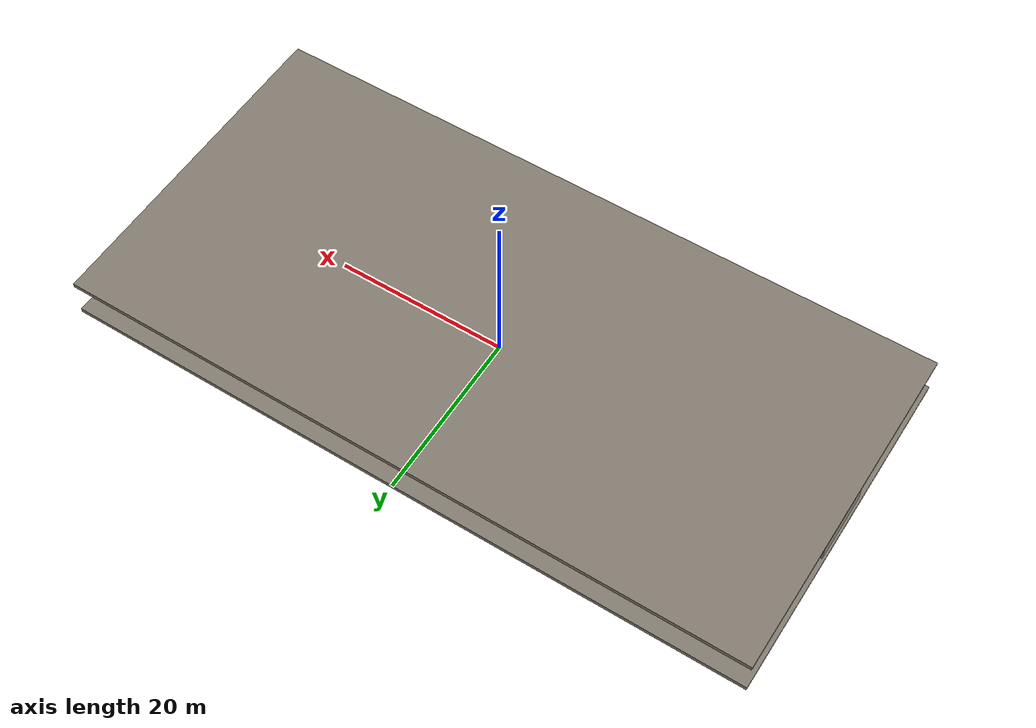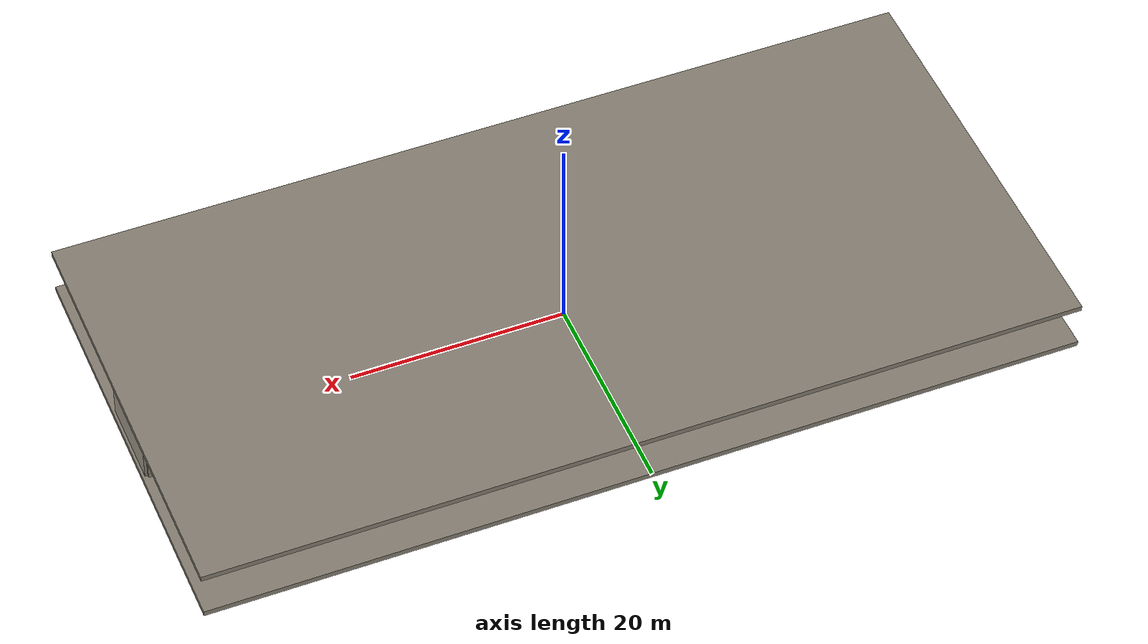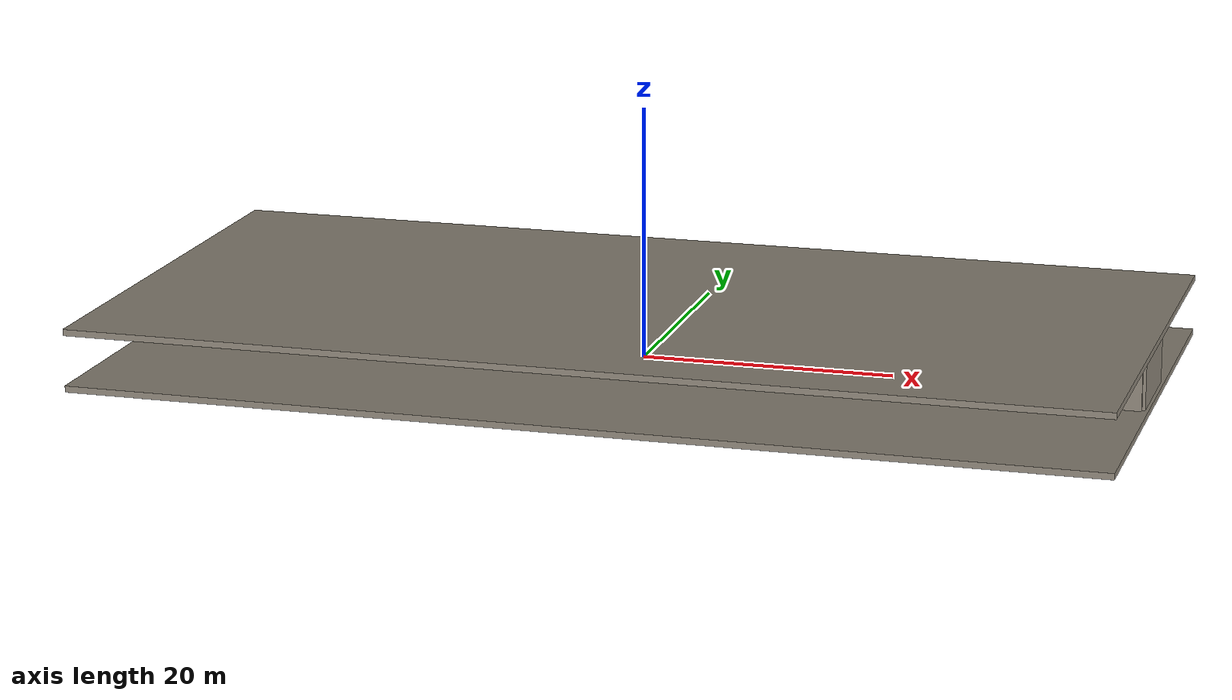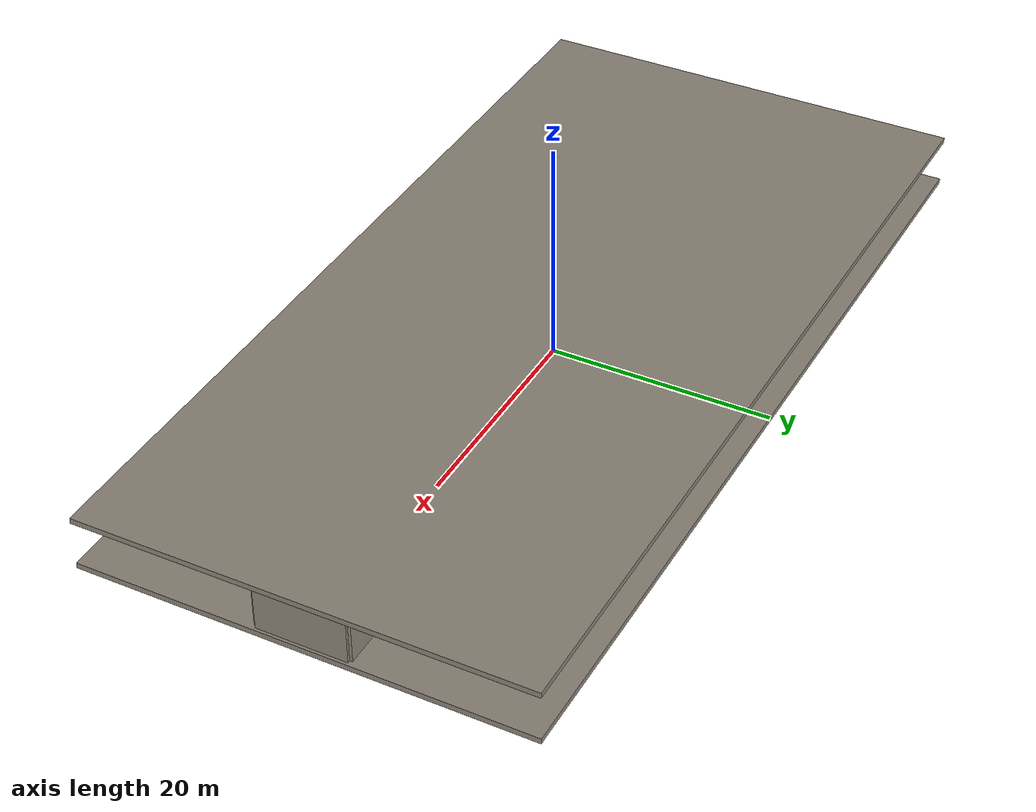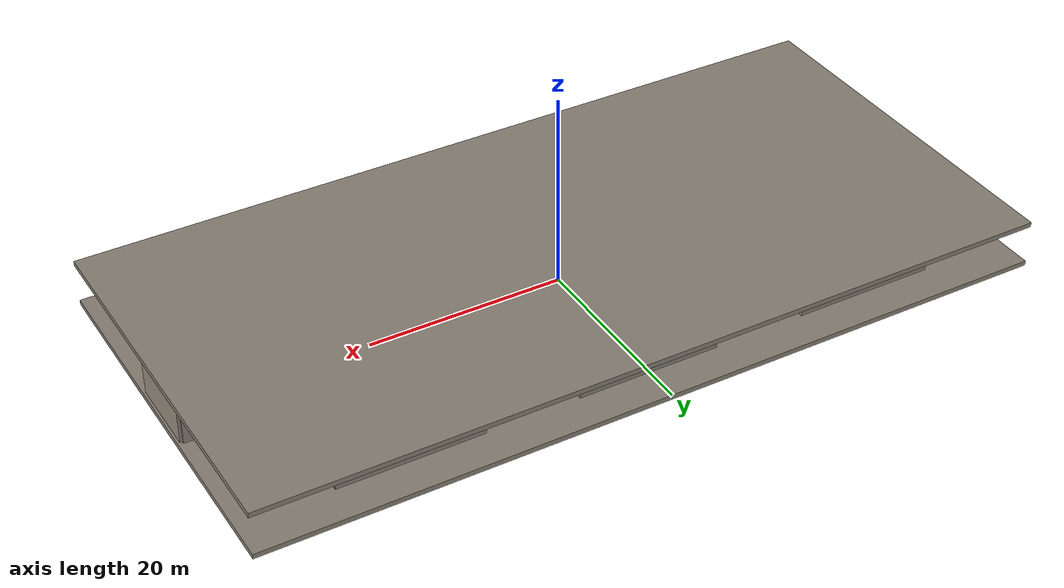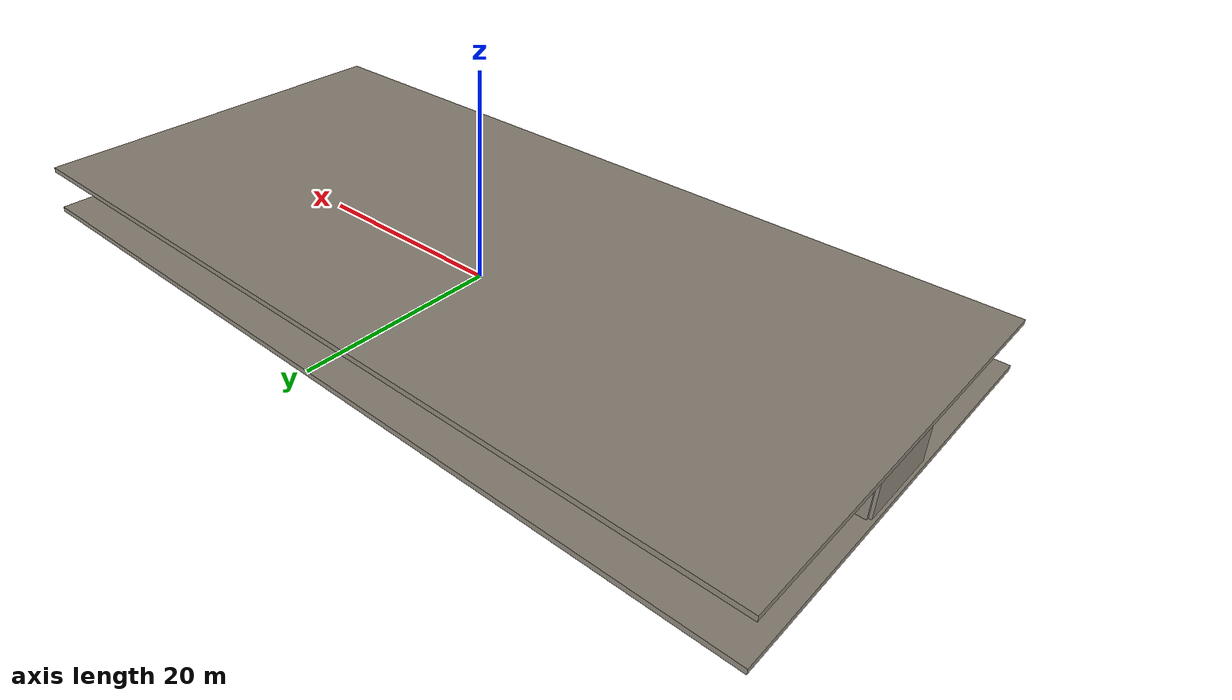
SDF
<?xml version="1.0" ?>
<sdf version="1.9">
  <world name="cave_box">
    <physics name="1ms" type="ignored">
      <max_step_size>0.001</max_step_size>
      <real_time_factor>1.0</real_time_factor>
    </physics>
    <plugin filename="gz-sim-physics-system" name="gz::sim::systems::Physics"/>
    <plugin filename="gz-sim-user-commands-system" name="gz::sim::systems::UserCommands"/>
    <plugin filename="gz-sim-scene-broadcaster-system" name="gz::sim::systems::SceneBroadcaster"/>
    <plugin filename="gz-sim-imu-system" name="gz::sim::systems::Imu"/>
    <plugin filename="gz-sim-sensors-system" name="gz::sim::systems::Sensors">
      <render_engine>ogre2</render_engine>
    </plugin>

    <gui fullscreen="0">
      <plugin filename="MinimalScene" name="3D View">
        <gz-gui>
          <title>3D View</title>
          <property type="bool" key="showTitleBar">false</property>
          <property type="string" key="state">docked</property>
        </gz-gui>
        <engine>ogre2</engine>
        <scene>scene</scene>
        <ambient_light>0.5 0.5 0.5</ambient_light>
        <background_color>0.6 0.6 0.65</background_color>
        <camera_pose>-14 -14 10 0 0.5 0.7</camera_pose>
      </plugin>
      <plugin filename="GzSceneManager" name="Scene Manager"/>
      <plugin filename="InteractiveViewControl" name="Interactive view control"/>
      <plugin filename="CameraTracking" name="Camera Tracking"/>
      <plugin filename="WorldControl" name="World control">
        <gz-gui>
          <property type="bool" key="showTitleBar">false</property>
          <property type="string" key="state">floating</property>
          <property type="double" key="height">72</property>
          <property type="double" key="width">121</property>
          <anchors target="3D View">
            <line own="left" target="left"/>
            <line own="bottom" target="bottom"/>
          </anchors>
        </gz-gui>
        <play_pause>true</play_pause>
        <step>true</step>
        <start_paused>false</start_paused>
        <service>/world/cave_box/control</service>
        <stats_topic>/world/cave_box/stats</stats_topic>
      </plugin>
      <plugin filename="EntityTree" name="Entity tree"/>
    </gui>

    <light type="directional" name="sun">
      <cast_shadows>false</cast_shadows>
      <pose>0 0 20 0 0 0</pose>
      <diffuse>0.9 0.9 0.9 1</diffuse>
      <specular>0.2 0.2 0.2 1</specular>
      <direction>-0.4 0.2 -0.9</direction>
    </light>

    <model name="floor">
      <static>true</static>
      <pose>0 0 -0.25 0 0 0</pose>
      <link name="link">
        <collision name="collision">
          <geometry><box><size>81.0 40.0 0.5</size></box></geometry>
        </collision>
        <visual name="visual">
          <geometry><box><size>81.0 40.0 0.5</size></box></geometry>
          <material>
            <ambient>0.35 0.33 0.30 1</ambient>
            <diffuse>0.55 0.52 0.47 1</diffuse>
          </material>
        </visual>
      </link>
    </model>
    <model name="ceiling">
      <static>true</static>
      <pose>0 0 4.25 0 0 0</pose>
      <link name="link">
        <collision name="collision">
          <geometry><box><size>81.0 40.0 0.5</size></box></geometry>
        </collision>
        <visual name="visual">
          <geometry><box><size>81.0 40.0 0.5</size></box></geometry>
          <material>
            <ambient>0.35 0.33 0.30 1</ambient>
            <diffuse>0.55 0.52 0.47 1</diffuse>
          </material>
        </visual>
      </link>
    </model>
    <model name="gallery_wall_south">
      <static>true</static>
      <pose>0 -4.0 2.0 0 0 0</pose>
      <link name="link">
        <collision name="collision">
          <geometry><box><size>80.0 0.5 4.0</size></box></geometry>
        </collision>
        <visual name="visual">
          <geometry><box><size>80.0 0.5 4.0</size></box></geometry>
          <material>
            <ambient>0.35 0.33 0.30 1</ambient>
            <diffuse>0.55 0.52 0.47 1</diffuse>
          </material>
        </visual>
      </link>
    </model>
    <model name="gallery_end_west">
      <static>true</static>
      <pose>-40.0 0 2.0 0 0 0</pose>
      <link name="link">
        <collision name="collision">
          <geometry><box><size>0.5 8.0 4.0</size></box></geometry>
        </collision>
        <visual name="visual">
          <geometry><box><size>0.5 8.0 4.0</size></box></geometry>
          <material>
            <ambient>0.35 0.33 0.30 1</ambient>
            <diffuse>0.55 0.52 0.47 1</diffuse>
          </material>
        </visual>
      </link>
    </model>
    <model name="gallery_end_east">
      <static>true</static>
      <pose>40.0 0 2.0 0 0 0</pose>
      <link name="link">
        <collision name="collision">
          <geometry><box><size>0.5 8.0 4.0</size></box></geometry>
        </collision>
        <visual name="visual">
          <geometry><box><size>0.5 8.0 4.0</size></box></geometry>
          <material>
            <ambient>0.35 0.33 0.30 1</ambient>
            <diffuse>0.55 0.52 0.47 1</diffuse>
          </material>
        </visual>
      </link>
    </model>
    <model name="gallery_wall_north_0">
      <static>true</static>
      <pose>-33.5 4.0 2.0 0 0 0</pose>
      <link name="link">
        <collision name="collision">
          <geometry><box><size>13.0 0.5 4.0</size></box></geometry>
        </collision>
        <visual name="visual">
          <geometry><box><size>13.0 0.5 4.0</size></box></geometry>
          <material>
            <ambient>0.35 0.33 0.30 1</ambient>
            <diffuse>0.55 0.52 0.47 1</diffuse>
          </material>
        </visual>
      </link>
    </model>
    <model name="gallery_wall_north_1">
      <static>true</static>
      <pose>-12.0 4.0 2.0 0 0 0</pose>
      <link name="link">
        <collision name="collision">
          <geometry><box><size>18.0 0.5 4.0</size></box></geometry>
        </collision>
        <visual name="visual">
          <geometry><box><size>18.0 0.5 4.0</size></box></geometry>
          <material>
            <ambient>0.35 0.33 0.30 1</ambient>
            <diffuse>0.55 0.52 0.47 1</diffuse>
          </material>
        </visual>
      </link>
    </model>
    <model name="gallery_wall_north_2">
      <static>true</static>
      <pose>12.0 4.0 2.0 0 0 0</pose>
      <link name="link">
        <collision name="collision">
          <geometry><box><size>18.0 0.5 4.0</size></box></geometry>
        </collision>
        <visual name="visual">
          <geometry><box><size>18.0 0.5 4.0</size></box></geometry>
          <material>
            <ambient>0.35 0.33 0.30 1</ambient>
            <diffuse>0.55 0.52 0.47 1</diffuse>
          </material>
        </visual>
      </link>
    </model>
    <model name="gallery_wall_north_3">
      <static>true</static>
      <pose>33.5 4.0 2.0 0 0 0</pose>
      <link name="link">
        <collision name="collision">
          <geometry><box><size>13.0 0.5 4.0</size></box></geometry>
        </collision>
        <visual name="visual">
          <geometry><box><size>13.0 0.5 4.0</size></box></geometry>
          <material>
            <ambient>0.35 0.33 0.30 1</ambient>
            <diffuse>0.55 0.52 0.47 1</diffuse>
          </material>
        </visual>
      </link>
    </model>
    <model name="chamber0_west">
      <static>true</static>
      <pose>-31.0 10.0 2.0 0 0 0</pose>
      <link name="link">
        <collision name="collision">
          <geometry><box><size>0.5 12.0 4.0</size></box></geometry>
        </collision>
        <visual name="visual">
          <geometry><box><size>0.5 12.0 4.0</size></box></geometry>
          <material>
            <ambient>0.35 0.33 0.30 1</ambient>
            <diffuse>0.55 0.52 0.47 1</diffuse>
          </material>
        </visual>
      </link>
    </model>
    <model name="chamber0_east">
      <static>true</static>
      <pose>-17.0 10.0 2.0 0 0 0</pose>
      <link name="link">
        <collision name="collision">
          <geometry><box><size>0.5 12.0 4.0</size></box></geometry>
        </collision>
        <visual name="visual">
          <geometry><box><size>0.5 12.0 4.0</size></box></geometry>
          <material>
            <ambient>0.35 0.33 0.30 1</ambient>
            <diffuse>0.55 0.52 0.47 1</diffuse>
          </material>
        </visual>
      </link>
    </model>
    <model name="chamber0_north">
      <static>true</static>
      <pose>-24.0 16.0 2.0 0 0 0</pose>
      <link name="link">
        <collision name="collision">
          <geometry><box><size>14.5 0.5 4.0</size></box></geometry>
        </collision>
        <visual name="visual">
          <geometry><box><size>14.5 0.5 4.0</size></box></geometry>
          <material>
            <ambient>0.35 0.33 0.30 1</ambient>
            <diffuse>0.55 0.52 0.47 1</diffuse>
          </material>
        </visual>
      </link>
    </model>
    <model name="chamber0_wall_w">
      <static>true</static>
      <pose>-28.5 4.0 2.0 0 0 0</pose>
      <link name="link">
        <collision name="collision">
          <geometry><box><size>5.0 0.5 4.0</size></box></geometry>
        </collision>
        <visual name="visual">
          <geometry><box><size>5.0 0.5 4.0</size></box></geometry>
          <material>
            <ambient>0.35 0.33 0.30 1</ambient>
            <diffuse>0.55 0.52 0.47 1</diffuse>
          </material>
        </visual>
      </link>
    </model>
    <model name="chamber0_wall_e">
      <static>true</static>
      <pose>-19.5 4.0 2.0 0 0 0</pose>
      <link name="link">
        <collision name="collision">
          <geometry><box><size>5.0 0.5 4.0</size></box></geometry>
        </collision>
        <visual name="visual">
          <geometry><box><size>5.0 0.5 4.0</size></box></geometry>
          <material>
            <ambient>0.35 0.33 0.30 1</ambient>
            <diffuse>0.55 0.52 0.47 1</diffuse>
          </material>
        </visual>
      </link>
    </model>
    <model name="chamber0_pillar">
      <static>true</static>
      <pose>-24.0 10.0 2.0 0 0 0</pose>
      <link name="link">
        <collision name="collision">
          <geometry><box><size>1.5 1.5 4.0</size></box></geometry>
        </collision>
        <visual name="visual">
          <geometry><box><size>1.5 1.5 4.0</size></box></geometry>
          <material>
            <ambient>0.35 0.33 0.30 1</ambient>
            <diffuse>0.55 0.52 0.47 1</diffuse>
          </material>
        </visual>
      </link>
    </model>
    <model name="chamber1_west">
      <static>true</static>
      <pose>-7.0 10.0 2.0 0 0 0</pose>
      <link name="link">
        <collision name="collision">
          <geometry><box><size>0.5 12.0 4.0</size></box></geometry>
        </collision>
        <visual name="visual">
          <geometry><box><size>0.5 12.0 4.0</size></box></geometry>
          <material>
            <ambient>0.35 0.33 0.30 1</ambient>
            <diffuse>0.55 0.52 0.47 1</diffuse>
          </material>
        </visual>
      </link>
    </model>
    <model name="chamber1_east">
      <static>true</static>
      <pose>7.0 10.0 2.0 0 0 0</pose>
      <link name="link">
        <collision name="collision">
          <geometry><box><size>0.5 12.0 4.0</size></box></geometry>
        </collision>
        <visual name="visual">
          <geometry><box><size>0.5 12.0 4.0</size></box></geometry>
          <material>
            <ambient>0.35 0.33 0.30 1</ambient>
            <diffuse>0.55 0.52 0.47 1</diffuse>
          </material>
        </visual>
      </link>
    </model>
    <model name="chamber1_north">
      <static>true</static>
      <pose>0.0 16.0 2.0 0 0 0</pose>
      <link name="link">
        <collision name="collision">
          <geometry><box><size>14.5 0.5 4.0</size></box></geometry>
        </collision>
        <visual name="visual">
          <geometry><box><size>14.5 0.5 4.0</size></box></geometry>
          <material>
            <ambient>0.35 0.33 0.30 1</ambient>
            <diffuse>0.55 0.52 0.47 1</diffuse>
          </material>
        </visual>
      </link>
    </model>
    <model name="chamber1_wall_w">
      <static>true</static>
      <pose>-4.5 4.0 2.0 0 0 0</pose>
      <link name="link">
        <collision name="collision">
          <geometry><box><size>5.0 0.5 4.0</size></box></geometry>
        </collision>
        <visual name="visual">
          <geometry><box><size>5.0 0.5 4.0</size></box></geometry>
          <material>
            <ambient>0.35 0.33 0.30 1</ambient>
            <diffuse>0.55 0.52 0.47 1</diffuse>
          </material>
        </visual>
      </link>
    </model>
    <model name="chamber1_wall_e">
      <static>true</static>
      <pose>4.5 4.0 2.0 0 0 0</pose>
      <link name="link">
        <collision name="collision">
          <geometry><box><size>5.0 0.5 4.0</size></box></geometry>
        </collision>
        <visual name="visual">
          <geometry><box><size>5.0 0.5 4.0</size></box></geometry>
          <material>
            <ambient>0.35 0.33 0.30 1</ambient>
            <diffuse>0.55 0.52 0.47 1</diffuse>
          </material>
        </visual>
      </link>
    </model>
    <model name="chamber1_pillar">
      <static>true</static>
      <pose>0.0 10.0 2.0 0 0 0</pose>
      <link name="link">
        <collision name="collision">
          <geometry><box><size>1.5 1.5 4.0</size></box></geometry>
        </collision>
        <visual name="visual">
          <geometry><box><size>1.5 1.5 4.0</size></box></geometry>
          <material>
            <ambient>0.35 0.33 0.30 1</ambient>
            <diffuse>0.55 0.52 0.47 1</diffuse>
          </material>
        </visual>
      </link>
    </model>
    <model name="chamber2_west">
      <static>true</static>
      <pose>17.0 10.0 2.0 0 0 0</pose>
      <link name="link">
        <collision name="collision">
          <geometry><box><size>0.5 12.0 4.0</size></box></geometry>
        </collision>
        <visual name="visual">
          <geometry><box><size>0.5 12.0 4.0</size></box></geometry>
          <material>
            <ambient>0.35 0.33 0.30 1</ambient>
            <diffuse>0.55 0.52 0.47 1</diffuse>
          </material>
        </visual>
      </link>
    </model>
    <model name="chamber2_east">
      <static>true</static>
      <pose>31.0 10.0 2.0 0 0 0</pose>
      <link name="link">
        <collision name="collision">
          <geometry><box><size>0.5 12.0 4.0</size></box></geometry>
        </collision>
        <visual name="visual">
          <geometry><box><size>0.5 12.0 4.0</size></box></geometry>
          <material>
            <ambient>0.35 0.33 0.30 1</ambient>
            <diffuse>0.55 0.52 0.47 1</diffuse>
          </material>
        </visual>
      </link>
    </model>
    <model name="chamber2_north">
      <static>true</static>
      <pose>24.0 16.0 2.0 0 0 0</pose>
      <link name="link">
        <collision name="collision">
          <geometry><box><size>14.5 0.5 4.0</size></box></geometry>
        </collision>
        <visual name="visual">
          <geometry><box><size>14.5 0.5 4.0</size></box></geometry>
          <material>
            <ambient>0.35 0.33 0.30 1</ambient>
            <diffuse>0.55 0.52 0.47 1</diffuse>
          </material>
        </visual>
      </link>
    </model>
    <model name="chamber2_wall_w">
      <static>true</static>
      <pose>19.5 4.0 2.0 0 0 0</pose>
      <link name="link">
        <collision name="collision">
          <geometry><box><size>5.0 0.5 4.0</size></box></geometry>
        </collision>
        <visual name="visual">
          <geometry><box><size>5.0 0.5 4.0</size></box></geometry>
          <material>
            <ambient>0.35 0.33 0.30 1</ambient>
            <diffuse>0.55 0.52 0.47 1</diffuse>
          </material>
        </visual>
      </link>
    </model>
    <model name="chamber2_wall_e">
      <static>true</static>
      <pose>28.5 4.0 2.0 0 0 0</pose>
      <link name="link">
        <collision name="collision">
          <geometry><box><size>5.0 0.5 4.0</size></box></geometry>
        </collision>
        <visual name="visual">
          <geometry><box><size>5.0 0.5 4.0</size></box></geometry>
          <material>
            <ambient>0.35 0.33 0.30 1</ambient>
            <diffuse>0.55 0.52 0.47 1</diffuse>
          </material>
        </visual>
      </link>
    </model>
    <model name="chamber2_pillar">
      <static>true</static>
      <pose>24.0 10.0 2.0 0 0 0</pose>
      <link name="link">
        <collision name="collision">
          <geometry><box><size>1.5 1.5 4.0</size></box></geometry>
        </collision>
        <visual name="visual">
          <geometry><box><size>1.5 1.5 4.0</size></box></geometry>
          <material>
            <ambient>0.35 0.33 0.30 1</ambient>
            <diffuse>0.55 0.52 0.47 1</diffuse>
          </material>
        </visual>
      </link>
    </model>
    <model name="rock_0">
      <static>true</static>
      <pose>-34.0 -2.2 0.6 0 0 0</pose>
      <link name="link">
        <collision name="collision">
          <geometry><box><size>1.6 1.6 1.2</size></box></geometry>
        </collision>
        <visual name="visual">
          <geometry><box><size>1.6 1.6 1.2</size></box></geometry>
          <material>
            <ambient>0.35 0.33 0.30 1</ambient>
            <diffuse>0.55 0.52 0.47 1</diffuse>
          </material>
        </visual>
      </link>
    </model>
    <model name="rock_1">
      <static>true</static>
      <pose>-26.0 2.2 0.6 0 0 0</pose>
      <link name="link">
        <collision name="collision">
          <geometry><box><size>1.6 1.6 1.2</size></box></geometry>
        </collision>
        <visual name="visual">
          <geometry><box><size>1.6 1.6 1.2</size></box></geometry>
          <material>
            <ambient>0.35 0.33 0.30 1</ambient>
            <diffuse>0.55 0.52 0.47 1</diffuse>
          </material>
        </visual>
      </link>
    </model>
    <model name="rock_2">
      <static>true</static>
      <pose>-18.0 -2.2 0.6 0 0 0</pose>
      <link name="link">
        <collision name="collision">
          <geometry><box><size>1.6 1.6 1.2</size></box></geometry>
        </collision>
        <visual name="visual">
          <geometry><box><size>1.6 1.6 1.2</size></box></geometry>
          <material>
            <ambient>0.35 0.33 0.30 1</ambient>
            <diffuse>0.55 0.52 0.47 1</diffuse>
          </material>
        </visual>
      </link>
    </model>
    <model name="rock_3">
      <static>true</static>
      <pose>-10.0 2.2 0.6 0 0 0</pose>
      <link name="link">
        <collision name="collision">
          <geometry><box><size>1.6 1.6 1.2</size></box></geometry>
        </collision>
        <visual name="visual">
          <geometry><box><size>1.6 1.6 1.2</size></box></geometry>
          <material>
            <ambient>0.35 0.33 0.30 1</ambient>
            <diffuse>0.55 0.52 0.47 1</diffuse>
          </material>
        </visual>
      </link>
    </model>
    <model name="rock_4">
      <static>true</static>
      <pose>-2.0 -2.2 0.6 0 0 0</pose>
      <link name="link">
        <collision name="collision">
          <geometry><box><size>1.6 1.6 1.2</size></box></geometry>
        </collision>
        <visual name="visual">
          <geometry><box><size>1.6 1.6 1.2</size></box></geometry>
          <material>
            <ambient>0.35 0.33 0.30 1</ambient>
            <diffuse>0.55 0.52 0.47 1</diffuse>
          </material>
        </visual>
      </link>
    </model>
    <model name="rock_5">
      <static>true</static>
      <pose>6.0 2.2 0.6 0 0 0</pose>
      <link name="link">
        <collision name="collision">
          <geometry><box><size>1.6 1.6 1.2</size></box></geometry>
        </collision>
        <visual name="visual">
          <geometry><box><size>1.6 1.6 1.2</size></box></geometry>
          <material>
            <ambient>0.35 0.33 0.30 1</ambient>
            <diffuse>0.55 0.52 0.47 1</diffuse>
          </material>
        </visual>
      </link>
    </model>
    <model name="rock_6">
      <static>true</static>
      <pose>14.0 -2.2 0.6 0 0 0</pose>
      <link name="link">
        <collision name="collision">
          <geometry><box><size>1.6 1.6 1.2</size></box></geometry>
        </collision>
        <visual name="visual">
          <geometry><box><size>1.6 1.6 1.2</size></box></geometry>
          <material>
            <ambient>0.35 0.33 0.30 1</ambient>
            <diffuse>0.55 0.52 0.47 1</diffuse>
          </material>
        </visual>
      </link>
    </model>
    <model name="rock_7">
      <static>true</static>
      <pose>22.0 2.2 0.6 0 0 0</pose>
      <link name="link">
        <collision name="collision">
          <geometry><box><size>1.6 1.6 1.2</size></box></geometry>
        </collision>
        <visual name="visual">
          <geometry><box><size>1.6 1.6 1.2</size></box></geometry>
          <material>
            <ambient>0.35 0.33 0.30 1</ambient>
            <diffuse>0.55 0.52 0.47 1</diffuse>
          </material>
        </visual>
      </link>
    </model>
    <model name="rock_8">
      <static>true</static>
      <pose>30.0 -2.2 0.6 0 0 0</pose>
      <link name="link">
        <collision name="collision">
          <geometry><box><size>1.6 1.6 1.2</size></box></geometry>
        </collision>
        <visual name="visual">
          <geometry><box><size>1.6 1.6 1.2</size></box></geometry>
          <material>
            <ambient>0.35 0.33 0.30 1</ambient>
            <diffuse>0.55 0.52 0.47 1</diffuse>
          </material>
        </visual>
      </link>
    </model>
  </world>
</sdf>
